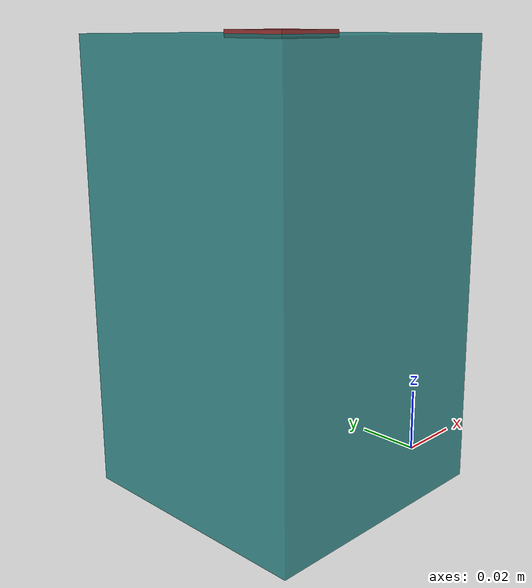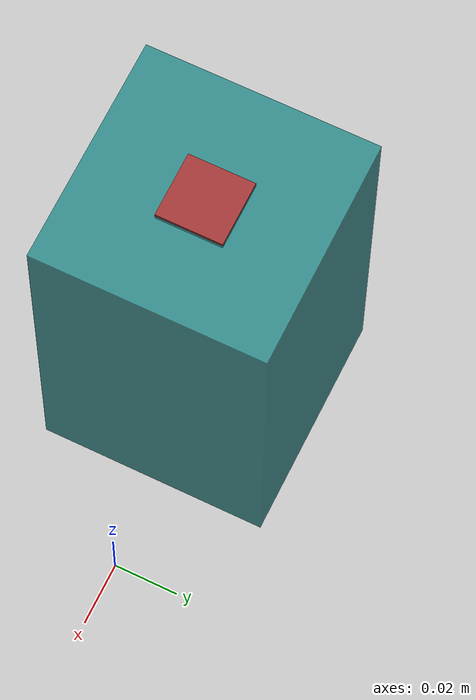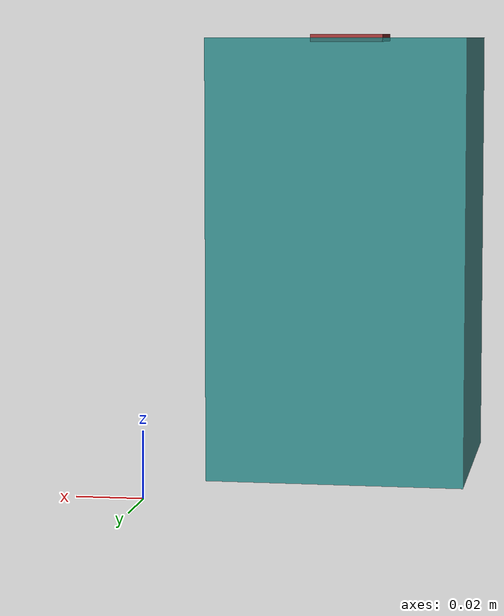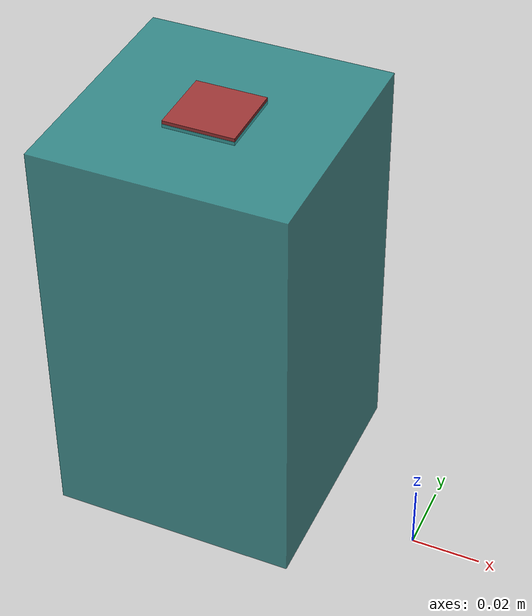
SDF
<?xml version="1.0"?>

<sdf version="1.7">
  <model name="cube_a0.06m">

    <joint name="world_cube_offset" type="fixed">
      <child>cube_root</child>
      <parent>world</parent>
      <axis>
        <limit>
          <effort>0</effort>
        </limit>
      </axis>
    </joint>

    <link name="cube_root">
      <pose relative_to="__model__">-0.06 0.0 0.073 0 0 0</pose>
    </link>

    <joint name="cube_root_joint" type="revolute">
        <child>cube_link</child>
        <parent>cube_root</parent>
        <axis>
          <xyz>0 0 1</xyz>
          <limit>
            <effort>0</effort>
          </limit>
        </axis>
    </joint>

    <link name="cube_link">
      <pose relative_to="cube_root">0 0 0 0 0 0</pose>
      <inertial>
        <mass>1.0</mass>
        <inertia>
          <ixx>0.001</ixx>
          <ixy>0</ixy>
          <ixz>0</ixz>
          <iyy>0.001</iyy>
          <iyz>0</iyz>
          <izz>0.001</izz>
        </inertia>
      </inertial>

      <visual name="visual">
        <geometry>
          <box>
            <size> 0.07 0.07 0.12 </size>
          </box>
        </geometry>
        <material>
          <diffuse>0.1 0.5 0.5 0.8</diffuse>
        </material>
      </visual>

      <visual name="visual_2">
        <pose> 0 0 0.06 0 0 0 </pose>
        <geometry>
          <box>
           <size> 0.02 0.02 0.002 </size>
          </box>
        </geometry>
        <material>
          <diffuse>0.6 0.2 0.2 0.9</diffuse>
        </material>
      </visual>

      <collision name="collision">
        <geometry>
          <box>
            <size> 0.07 0.07 0.12 </size>
          </box>
        </geometry>
        <surface>
          <friction>
            <ode>
              <mu>1.0</mu>
              <mu2>1.0</mu2>
            </ode>
          </friction>
        </surface>
      </collision>

    </link>

  </model>
</sdf>
